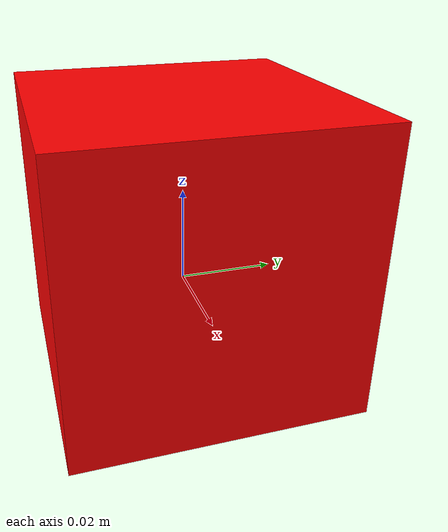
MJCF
<mujoco model="picked_box">
    <worldbody>
        <body name="picked_box" pos="0.0 0.0 0.0" quat="1 0 0 0">
            <geom name="picked_box" pos="0 0 0.01" size="0.03 0.03 0.03" rgba="1 0 0 1.0" type="box" mass="0.05" friction="0.3 0.001 0.0001" priority="1"/>
            <joint name="picked_box_joint" type="free"/>
        </body>
    </worldbody>
</mujoco>
